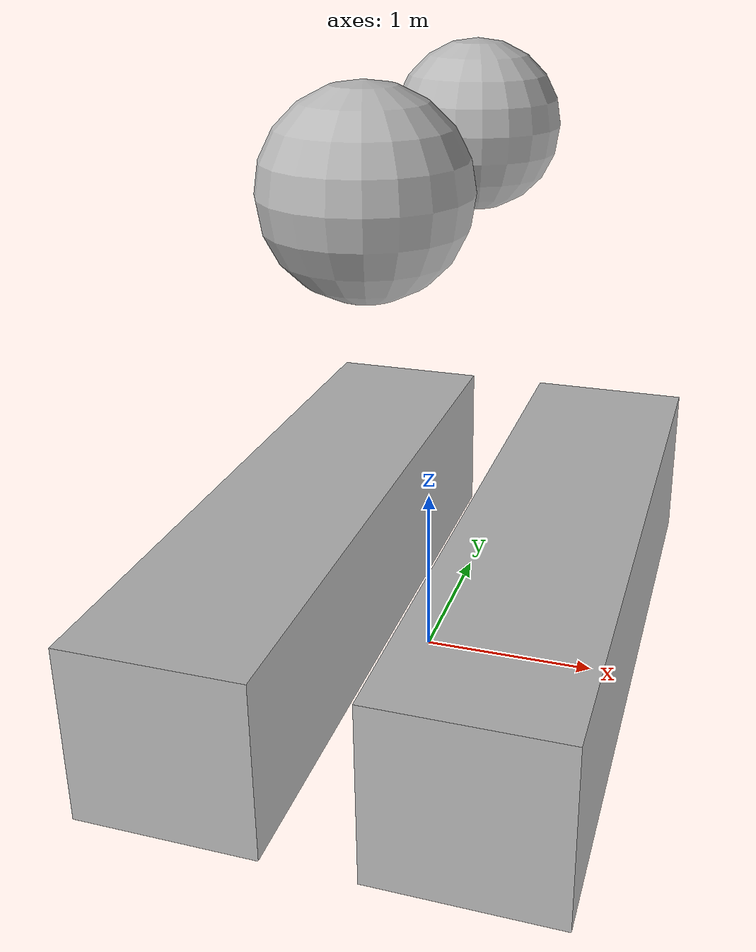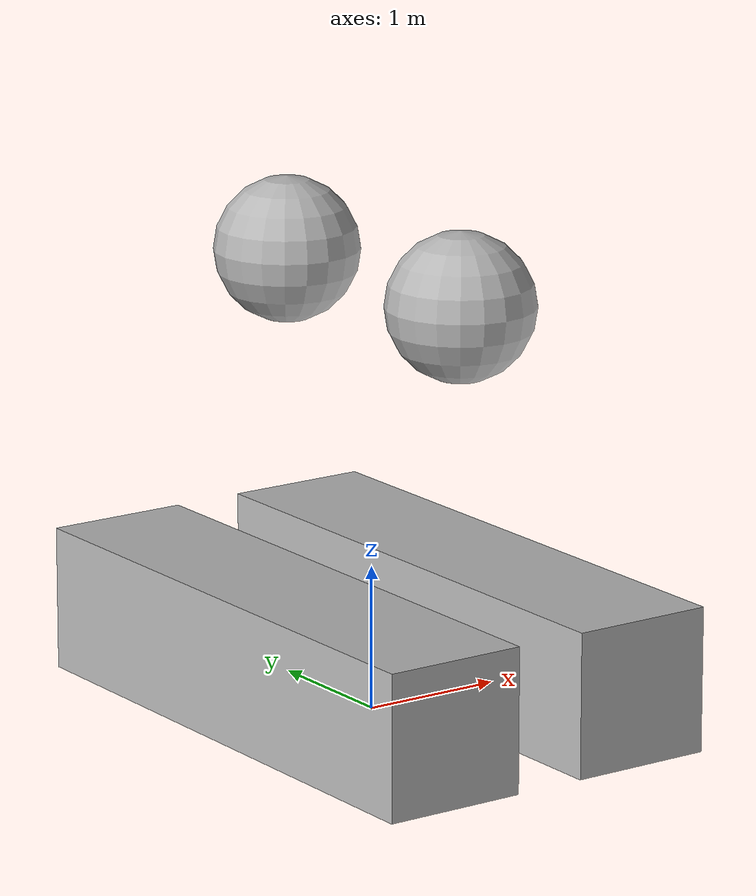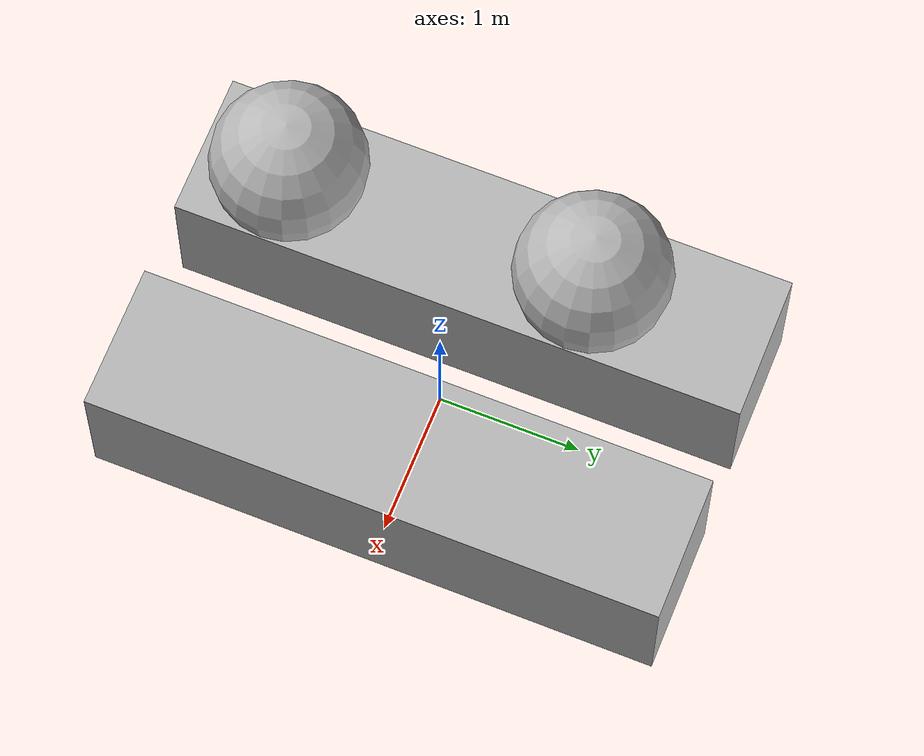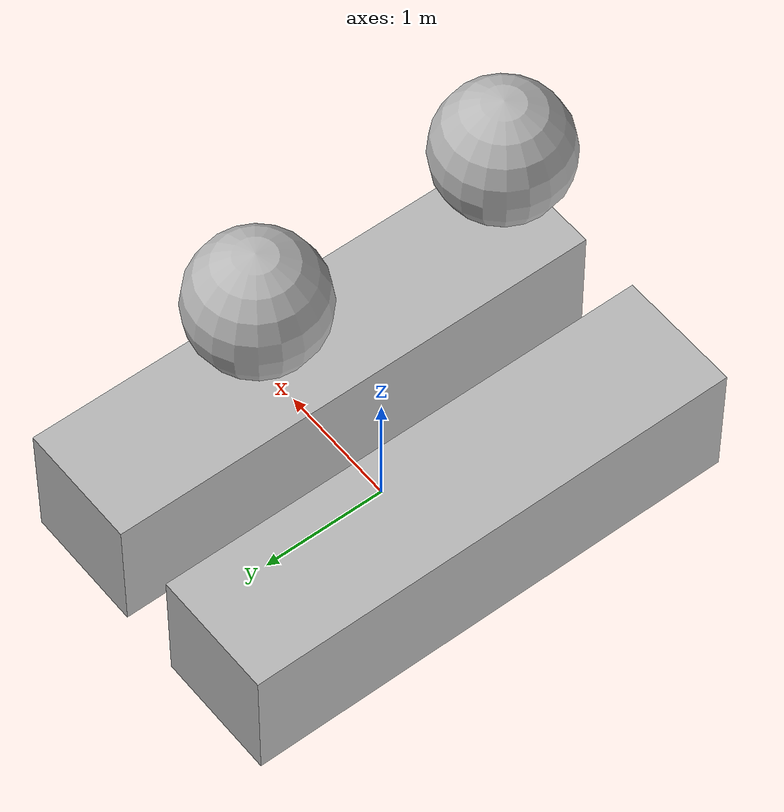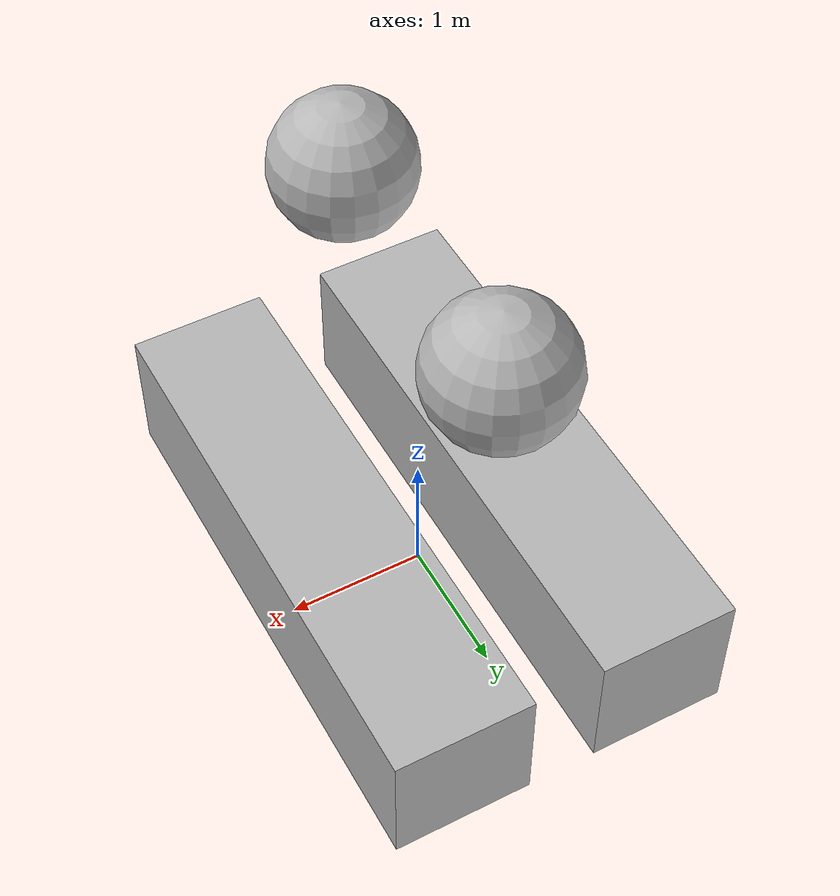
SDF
<?xml version="1.0" ?>
<sdf version="1.6">
  <world name="contact_sensor">
    <physics name="fast" type="ignored">
      <real_time_factor>0</real_time_factor>
    </physics>

    <plugin
      filename="ignition-gazebo-physics-system"
      name="ignition::gazebo::systems::Physics">
      <contacts>
        <include_entity_names>false</include_entity_names>
      </contacts>
    </plugin>
    <plugin
      filename="ignition-gazebo-contact-system"
      name="ignition::gazebo::systems::Contact">
    </plugin>

    <model name="contact_model">
      <pose>0 0 3.0 0 0.0 0</pose>
      <link name="link">
        <collision name="collision_sphere1">
          <pose>0 1 0.0 0 0.0 0</pose>
          <geometry>
            <sphere>
              <radius>0.5</radius>
            </sphere>
          </geometry>
        </collision>
        <collision name="collision_sphere2">
          <pose>0 -1 0.0 0 0.0 0</pose>
          <geometry>
            <sphere>
              <radius>0.5</radius>
            </sphere>
          </geometry>
        </collision>
        <visual name="visual_sphere1">
          <pose>0 1 0.0 0 0.0 0</pose>
          <geometry>
            <sphere>
              <radius>0.5</radius>
            </sphere>
          </geometry>
        </visual>
        <visual name="visual_sphere2">
          <pose>0 -1 0.0 0 0.0 0</pose>
          <geometry>
            <sphere>
              <radius>0.5</radius>
            </sphere>
          </geometry>
        </visual>
        <sensor name='sensor_contact' type='contact'>
          <contact>
            <collision>collision_sphere1</collision>
            <collision>collision_sphere2</collision>
            <topic>/test_multiple_collisions</topic>
          </contact>
          <always_on>1</always_on>
          <update_rate>1000</update_rate>
        </sensor>
      </link>
    </model>

    <model name="box1">
      <static>1</static>
      <pose>-0.75 0 0.5 0 0 0</pose>
      <link name="link">
        <collision name="collision_box1_box">
          <geometry>
            <box>
              <size>1 4 1</size>
            </box>
          </geometry>
        </collision>
        <visual name="visual">
          <geometry>
            <box>
              <size>1 4 1</size>
            </box>
          </geometry>
        </visual>
      </link>
    </model>

    <model name="box2">
      <static>1</static>
      <pose>0.75 0 0.5 0 0 0</pose>
      <link name="link">
        <collision name="collision_box2_box">
          <geometry>
            <box>
              <size>1 4 1</size>
            </box>
          </geometry>
        </collision>
        <visual name="visual">
          <geometry>
            <box>
              <size>1 4 1</size>
            </box>
          </geometry>
        </visual>
      </link>
    </model>
  </world>
</sdf>
